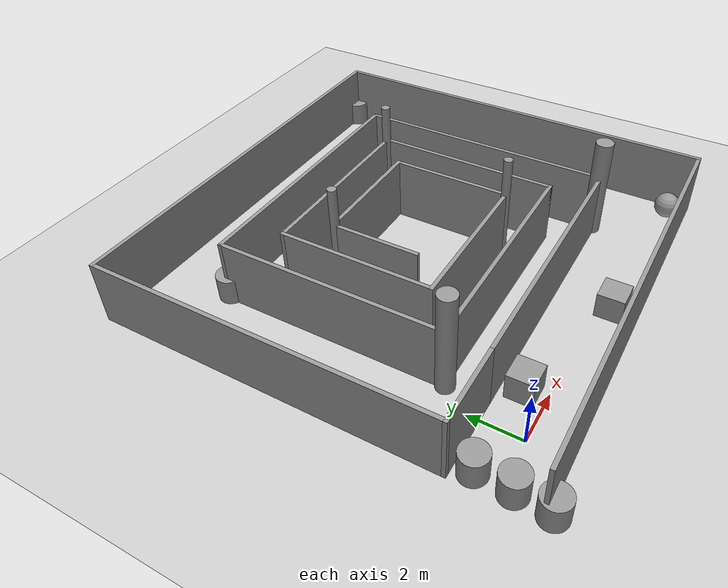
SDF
<sdf version="1.7">
 <world name="default">
  <light name="sun" type="directional">
   <pose>0 0 10 0 -0 0</pose>
   <diffuse>0.8 0.8 0.8 1</diffuse>
   <specular>0.2 0.2 0.2 1</specular>
   <attenuation>
    <range>1000</range>
    <constant>0.9</constant>
    <linear>0.01</linear>
    <quadratic>0.001</quadratic>
   </attenuation>
   <direction>-0.5 0.1 -0.9</direction>
   <spot><inner_angle>0</inner_angle><outer_angle>0</outer_angle><falloff>0</falloff></spot>
  </light>
  <model name="ground_plane">
   <static>1</static>
   <link name="link">
    <collision name="collision">
     <geometry><plane><normal>0 0 1</normal><size>100 100</size></plane></geometry>
     <surface>
      <contact><collide_bitmask>65535</collide_bitmask></contact>
      <friction><ode><mu>100</mu><mu2>50</mu2></ode></friction>
     </surface>
    </collision>
    <visual name="visual">
     <cast_shadows>0</cast_shadows>
     <geometry><plane><normal>0 0 1</normal><size>100 100</size></plane></geometry>
     <material>
      <script><uri>file://media/materials/scripts/gazebo.material</uri><name>Gazebo/Grey</name></script>
     </material>
    </visual>
   </link>
  </model>
  <gravity>0 0 -9.8</gravity>
  <magnetic_field>6e-06 2.3e-05 -4.2e-05</magnetic_field>
  <atmosphere type="adiabatic"/>
  <physics type="ode">
   <max_step_size>0.001</max_step_size>
   <real_time_factor>1</real_time_factor>
   <real_time_update_rate>1000</real_time_update_rate>
  </physics>
  <scene><ambient>0.4 0.4 0.4 1</ambient><background>0.7 0.7 0.7 1</background><shadows>1</shadows></scene>
  <spherical_coordinates>
   <surface_model>EARTH_WGS84</surface_model>
   <latitude_deg>0</latitude_deg>
   <longitude_deg>0</longitude_deg>
   <elevation>0</elevation>
   <heading_deg>0</heading_deg>
  </spherical_coordinates>
  <model name="maze03">
   <pose>5.87859 6.63891 0 0 -0 0</pose>
   <link name="Wall_38">
    <collision name="Wall_38_Collision">
     <geometry><box><size>10.25 0.15 2.5</size></box></geometry>
     <pose>0 0 1.25 0 -0 0</pose>
    </collision>
    <visual name="Wall_38_Visual">
     <pose>0 0 1.25 0 -0 0</pose>
     <geometry><box><size>10.25 0.15 2.5</size></box></geometry>
     <material>
      <script><uri>file://media/materials/scripts/gazebo.material</uri><name>Gazebo/Grey</name></script>
      <ambient>1 1 1 1</ambient>
     </material>
     <meta><layer>0</layer></meta>
    </visual>
    <pose>-0.15 -5.05 0 0 -0 0</pose>
   </link>
   <link name="Wall_39">
    <collision name="Wall_39_Collision">
     <geometry><box><size>10.25 0.15 2.5</size></box></geometry>
     <pose>0 0 1.25 0 -0 0</pose>
    </collision>
    <visual name="Wall_39_Visual">
     <pose>0 0 1.25 0 -0 0</pose>
     <geometry><box><size>10.25 0.15 2.5</size></box></geometry>
     <material>
      <script><uri>file://media/materials/scripts/gazebo.material</uri><name>Gazebo/Grey</name></script>
      <ambient>1 1 1 1</ambient>
     </material>
     <meta><layer>0</layer></meta>
    </visual>
    <pose>4.9 0 0 0 -0 1.5708</pose>
   </link>
   <link name="Wall_40">
    <collision name="Wall_40_Collision">
     <geometry><box><size>10.25 0.15 2.5</size></box></geometry>
     <pose>0 0 1.25 0 -0 0</pose>
    </collision>
    <visual name="Wall_40_Visual">
     <pose>0 0 1.25 0 -0 0</pose>
     <geometry><box><size>10.25 0.15 2.5</size></box></geometry>
     <material>
      <script><uri>file://media/materials/scripts/gazebo.material</uri><name>Gazebo/Grey</name></script>
      <ambient>1 1 1 1</ambient>
     </material>
     <meta><layer>0</layer></meta>
    </visual>
    <pose>-0.15 5.05 0 0 -0 3.14159</pose>
   </link>
   <link name="Wall_41">
    <collision name="Wall_41_Collision">
     <geometry><box><size>8.75 0.15 2.5</size></box></geometry>
     <pose>0 0 1.25 0 -0 0</pose>
    </collision>
    <visual name="Wall_41_Visual">
     <pose>0 0 1.25 0 -0 0</pose>
     <geometry><box><size>8.75 0.15 2.5</size></box></geometry>
     <material>
      <script><uri>file://media/materials/scripts/gazebo.material</uri><name>Gazebo/Grey</name></script>
      <ambient>1 1 1 1</ambient>
     </material>
     <meta><layer>0</layer></meta>
    </visual>
    <pose>-5.2 0.75 0 0 -0 -1.5708</pose>
   </link>
   <link name="Wall_42">
    <collision name="Wall_42_Collision">
     <geometry><box><size>8.75 0.15 2.5</size></box></geometry>
     <pose>0 0 1.25 0 -0 0</pose>
    </collision>
    <visual name="Wall_42_Visual">
     <pose>0 0 1.25 0 -0 0</pose>
     <geometry><box><size>8.75 0.15 2.5</size></box></geometry>
     <material>
      <script><uri>file://media/materials/scripts/gazebo.material</uri><name>Gazebo/Grey</name></script>
      <ambient>1 1 1 1</ambient>
     </material>
     <meta><layer>0</layer></meta>
    </visual>
    <pose>-0.9 -3.55 0 0 -0 0</pose>
   </link>
   <link name="Wall_43">
    <collision name="Wall_43_Collision">
     <geometry><box><size>7.25 0.15 2.5</size></box></geometry>
     <pose>0 0 1.25 0 -0 0</pose>
    </collision>
    <visual name="Wall_43_Visual">
     <pose>0 0 1.25 0 -0 0</pose>
     <geometry><box><size>7.25 0.15 2.5</size></box></geometry>
     <material>
      <script><uri>file://media/materials/scripts/gazebo.material</uri><name>Gazebo/Grey</name></script>
      <ambient>1 1 1 1</ambient>
     </material>
     <meta><layer>0</layer></meta>
    </visual>
    <pose>3.4 0 0 0 -0 1.5708</pose>
   </link>
   <link name="Wall_44">
    <collision name="Wall_44_Collision">
     <geometry><box><size>7.25 0.15 2.5</size></box></geometry>
     <pose>0 0 1.25 0 -0 0</pose>
    </collision>
    <visual name="Wall_44_Visual">
     <pose>0 0 1.25 0 -0 0</pose>
     <geometry><box><size>7.25 0.15 2.5</size></box></geometry>
     <material>
      <script><uri>file://media/materials/scripts/gazebo.material</uri><name>Gazebo/Grey</name></script>
      <ambient>1 1 1 1</ambient>
     </material>
     <meta><layer>0</layer></meta>
    </visual>
    <pose>-0.15 3.55 0 0 -0 3.14159</pose>
   </link>
   <link name="Wall_45">
    <collision name="Wall_45_Collision">
     <geometry><box><size>6 0.15 2.5</size></box></geometry>
     <pose>0 0 1.25 0 -0 0</pose>
    </collision>
    <visual name="Wall_45_Visual">
     <pose>0 0 1.25 0 -0 0</pose>
     <geometry><box><size>6 0.15 2.5</size></box></geometry>
     <material>
      <script><uri>file://media/materials/scripts/gazebo.material</uri><name>Gazebo/Grey</name></script>
      <ambient>1 1 1 1</ambient>
     </material>
     <meta><layer>0</layer></meta>
    </visual>
    <pose>-3.7 0.625 0 0 -0 -1.5708</pose>
   </link>
   <link name="Wall_46">
    <collision name="Wall_46_Collision">
     <geometry><box><size>6 0.15 2.5</size></box></geometry>
     <pose>0 0 1.25 0 -0 0</pose>
    </collision>
    <visual name="Wall_46_Visual">
     <pose>0 0 1.25 0 -0 0</pose>
     <geometry><box><size>6 0.15 2.5</size></box></geometry>
     <material>
      <script><uri>file://media/materials/scripts/gazebo.material</uri><name>Gazebo/Grey</name></script>
      <ambient>1 1 1 1</ambient>
     </material>
     <meta><layer>0</layer></meta>
    </visual>
    <pose>-0.775 -2.3 0 0 -0 0</pose>
   </link>
   <link name="Wall_47">
    <collision name="Wall_47_Collision">
     <geometry><box><size>4.75 0.15 2.5</size></box></geometry>
     <pose>0 0 1.25 0 -0 0</pose>
    </collision>
    <visual name="Wall_47_Visual">
     <pose>0 0 1.25 0 -0 0</pose>
     <geometry><box><size>4.75 0.15 2.5</size></box></geometry>
     <material>
      <script><uri>file://media/materials/scripts/gazebo.material</uri><name>Gazebo/Grey</name></script>
      <ambient>1 1 1 1</ambient>
     </material>
     <meta><layer>0</layer></meta>
    </visual>
    <pose>2.15 0 0 0 -0 1.5708</pose>
   </link>
   <link name="Wall_48">
    <collision name="Wall_48_Collision">
     <geometry><box><size>4.75 0.15 2.5</size></box></geometry>
     <pose>0 0 1.25 0 -0 0</pose>
    </collision>
    <visual name="Wall_48_Visual">
     <pose>0 0 1.25 0 -0 0</pose>
     <geometry><box><size>4.75 0.15 2.5</size></box></geometry>
     <material>
      <script><uri>file://media/materials/scripts/gazebo.material</uri><name>Gazebo/Grey</name></script>
      <ambient>1 1 1 1</ambient>
     </material>
     <meta><layer>0</layer></meta>
    </visual>
    <pose>-0.15 2.3 0 0 -0 3.14159</pose>
   </link>
   <link name="Wall_49">
    <collision name="Wall_49_Collision">
     <geometry><box><size>3.5 0.15 2.5</size></box></geometry>
     <pose>0 0 1.25 0 -0 0</pose>
    </collision>
    <visual name="Wall_49_Visual">
     <pose>0 0 1.25 0 -0 0</pose>
     <geometry><box><size>3.5 0.15 2.5</size></box></geometry>
     <material>
      <script><uri>file://media/materials/scripts/gazebo.material</uri><name>Gazebo/Grey</name></script>
      <ambient>1 1 1 1</ambient>
     </material>
     <meta><layer>0</layer></meta>
    </visual>
    <pose>-2.45 0.625 0 0 -0 -1.5708</pose>
   </link>
   <link name="Wall_53">
    <collision name="Wall_53_Collision">
     <geometry><box><size>3 0.15 2.5</size></box></geometry>
     <pose>0 0 1.25 0 -0 0</pose>
    </collision>
    <visual name="Wall_53_Visual">
     <pose>0 0 1.25 0 -0 0</pose>
     <geometry><box><size>3 0.15 2.5</size></box></geometry>
     <material>
      <script><uri>file://media/materials/scripts/gazebo.material</uri><name>Gazebo/Grey</name></script>
      <ambient>1 1 1 1</ambient>
     </material>
     <meta><layer>0</layer></meta>
    </visual>
    <pose>-6.625 -5.05 0 0 -0 3.14159</pose>
   </link>
   <link name="Wall_56">
    <collision name="Wall_56_Collision">
     <geometry><box><size>13.25 0.15 2.5</size></box></geometry>
     <pose>0 0 1.25 0 -0 0</pose>
    </collision>
    <visual name="Wall_56_Visual">
     <pose>0 0 1.25 0 -0 0</pose>
     <geometry><box><size>13.25 0.15 2.5</size></box></geometry>
     <material>
      <script><uri>file://media/materials/scripts/gazebo.material</uri><name>Gazebo/Grey</name></script>
      <ambient>1 1 1 1</ambient>
     </material>
     <meta><layer>0</layer></meta>
    </visual>
    <pose>-8.05 1.5 0 0 -0 1.5708</pose>
   </link>
   <link name="Wall_57">
    <collision name="Wall_57_Collision">
     <geometry><box><size>16.25 0.15 2.5</size></box></geometry>
     <pose>0 0 1.25 0 -0 0</pose>
    </collision>
    <visual name="Wall_57_Visual">
     <pose>0 0 1.25 0 -0 0</pose>
     <geometry><box><size>16.25 0.15 2.5</size></box></geometry>
     <material>
      <script><uri>file://media/materials/scripts/gazebo.material</uri><name>Gazebo/Grey</name></script>
      <ambient>1 1 1 1</ambient>
     </material>
     <meta><layer>0</layer></meta>
    </visual>
    <pose>-0 8.05 0 0 -0 0</pose>
   </link>
   <link name="Wall_58">
    <collision name="Wall_58_Collision">
     <geometry><box><size>16.25 0.15 2.5</size></box></geometry>
     <pose>0 0 1.25 0 -0 0</pose>
    </collision>
    <visual name="Wall_58_Visual">
     <pose>0 0 1.25 0 -0 0</pose>
     <geometry><box><size>16.25 0.15 2.5</size></box></geometry>
     <material>
      <script><uri>file://media/materials/scripts/gazebo.material</uri><name>Gazebo/Grey</name></script>
      <ambient>1 1 1 1</ambient>
     </material>
     <meta><layer>0</layer></meta>
    </visual>
    <pose>8.05 0 0 0 -0 -1.5708</pose>
   </link>
   <link name="Wall_59">
    <collision name="Wall_59_Collision">
     <geometry><box><size>16.25 0.15 2.5</size></box></geometry>
     <pose>0 0 1.25 0 -0 0</pose>
    </collision>
    <visual name="Wall_59_Visual">
     <pose>0 0 1.25 0 -0 0</pose>
     <geometry><box><size>16.25 0.15 2.5</size></box></geometry>
     <material>
      <script><uri>file://media/materials/scripts/gazebo.material</uri><name>Gazebo/Grey</name></script>
      <ambient>1 1 1 1</ambient>
     </material>
     <meta><layer>0</layer></meta>
    </visual>
    <pose>-0 -8.05 0 0 -0 3.14159</pose>
   </link>
   <static>1</static>
  </model>
  <model name="unit_cylinder">
   <pose>-1.89221 -1.58086 0.499998 3e-06 -3e-06 0.111612</pose>
   <link name="link">
    <inertial>
     <mass>1</mass>
     <inertia><ixx>0.145833</ixx><ixy>0</ixy><ixz>0</ixz><iyy>0.145833</iyy><iyz>0</iyz><izz>0.125</izz></inertia>
    </inertial>
    <collision name="collision">
     <geometry><cylinder><radius>0.5</radius><length>1</length></cylinder></geometry>
    </collision>
    <visual name="visual">
     <geometry><cylinder><radius>0.5</radius><length>1</length></cylinder></geometry>
     <material>
      <script><name>Gazebo/Grey</name><uri>file://media/materials/scripts/gazebo.material</uri></script>
     </material>
    </visual>
   </link>
  </model>
  <model name="unit_cylinder_1">
   <pose>13.7536 14.6464 0.499997 3e-06 1e-06 -0</pose>
   <link name="link">
    <inertial>
     <mass>1</mass>
     <inertia><ixx>0.145833</ixx><ixy>0</ixy><ixz>0</ixz><iyy>0.145833</iyy><iyz>0</iyz><izz>0.125</izz></inertia>
    </inertial>
    <collision name="collision">
     <geometry><cylinder><radius>0.5</radius><length>1</length></cylinder></geometry>
    </collision>
    <visual name="visual">
     <geometry><cylinder><radius>0.5</radius><length>1</length></cylinder></geometry>
     <material>
      <script><name>Gazebo/Grey</name><uri>file://media/materials/scripts/gazebo.material</uri></script>
     </material>
    </visual>
   </link>
  </model>
  <model name="unit_cylinder_2">
   <pose>0.842048 11.7545 0.499991 -0 -0 -0</pose>
   <link name="link">
    <inertial>
     <mass>1</mass>
     <inertia><ixx>0.145833</ixx><ixy>0</ixy><ixz>0</ixz><iyy>0.145833</iyy><iyz>0</iyz><izz>0.125</izz></inertia>
    </inertial>
    <collision name="collision">
     <geometry><cylinder><radius>0.5</radius><length>1</length></cylinder></geometry>
    </collision>
    <visual name="visual">
     <geometry><cylinder><radius>0.5</radius><length>1</length></cylinder></geometry>
     <material>
      <script><name>Gazebo/Grey</name><uri>file://media/materials/scripts/gazebo.material</uri></script>
     </material>
    </visual>
   </link>
  </model>
  <model name="unit_cylinder_0">
   <link name="link">
    <inertial>
     <mass>1.87711</mass>
     <inertia><ixx>2.56285</ixx><ixy>0</ixy><ixz>0</ixz><iyy>2.56285</iyy><iyz>0</iyz><izz>0.109992</izz></inertia>
    </inertial>
    <visual name="visual">
     <geometry><cylinder><radius>0.342335</radius><length>4.00403</length></cylinder></geometry>
     <material>
      <script><name>Gazebo/Grey</name><uri>file://media/materials/scripts/gazebo.material</uri></script>
      <shader type="pixel"/>
     </material>
    </visual>
    <collision name="collision">
     <geometry><cylinder><radius>0.342335</radius><length>4.00403</length></cylinder></geometry>
     <surface>
      <friction>
       <ode><mu>1</mu><mu2>1</mu2><fdir1>0 0 0</fdir1><slip1>0</slip1><slip2>0</slip2></ode>
       <torsional>
        <coefficient>1</coefficient>
        <patch_radius>0</patch_radius>
        <surface_radius>0</surface_radius>
        <use_patch_radius>1</use_patch_radius>
        <ode><slip>0</slip></ode>
       </torsional>
      </friction>
      <bounce><restitution_coefficient>0</restitution_coefficient><threshold>1e+06</threshold></bounce>
      <contact>
       <collide_without_contact>0</collide_without_contact>
       <collide_without_contact_bitmask>1</collide_without_contact_bitmask>
       <collide_bitmask>1</collide_bitmask>
       <ode>
        <soft_cfm>0</soft_cfm>
        <soft_erp>0.2</soft_erp>
        <kp>1e+13</kp>
        <kd>1</kd>
        <max_vel>0.01</max_vel>
        <min_depth>0</min_depth>
       </ode>
       <bullet>
        <split_impulse>1</split_impulse>
        <split_impulse_penetration_threshold>-0.01</split_impulse_penetration_threshold>
        <soft_cfm>0</soft_cfm>
        <soft_erp>0.2</soft_erp>
        <kp>1e+13</kp>
        <kd>1</kd>
       </bullet>
      </contact>
     </surface>
    </collision>
   </link>
   <static>0</static>
   <pose>10.8158 1.66885 2.00201 0 0 -3e-06</pose>
  </model>
  <model name="unit_box_0">
   <pose>1.72202 0.781729 0.5 0 -0 0.00052</pose>
   <link name="link">
    <inertial>
     <mass>1</mass>
     <inertia>
      <ixx>0.166667</ixx>
      <ixy>0</ixy>
      <ixz>0</ixz>
      <iyy>0.166667</iyy>
      <iyz>0</iyz>
      <izz>0.166667</izz>
     </inertia>
    </inertial>
    <collision name="collision"><geometry><box><size>1 0.999995 1</size></box></geometry></collision>
    <visual name="visual">
     <geometry><box><size>1 0.999995 1</size></box></geometry>
     <material>
      <script><name>Gazebo/Grey</name><uri>file://media/materials/scripts/gazebo.material</uri></script>
     </material>
    </visual>
   </link>
  </model>
  <model name="unit_box_0_clone">
   <pose>6.55511 -0.536638 0.499995 0 -1e-05 0</pose>
   <link name="link">
    <inertial>
     <mass>1</mass>
     <inertia>
      <ixx>0.166667</ixx>
      <ixy>0</ixy>
      <ixz>0</ixz>
      <iyy>0.166667</iyy>
      <iyz>0</iyz>
      <izz>0.166667</izz>
     </inertia>
    </inertial>
    <collision name="collision"><geometry><box><size>1 1 1</size></box></geometry></collision>
    <visual name="visual">
     <geometry><box><size>1 1 1</size></box></geometry>
     <material>
      <script><name>Gazebo/Grey</name><uri>file://media/materials/scripts/gazebo.material</uri></script>
     </material>
    </visual>
   </link>
  </model>
  <model name="unit_sphere">
   <pose>13.1414 -0.742298 0.5 0 -0 0</pose>
   <link name="link">
    <inertial>
     <mass>1</mass>
     <inertia><ixx>0.1</ixx><ixy>0</ixy><ixz>0</ixz><iyy>0.1</iyy><iyz>0</iyz><izz>0.1</izz></inertia>
    </inertial>
    <collision name="collision"><geometry><sphere><radius>0.5</radius></sphere></geometry></collision>
    <visual name="visual">
     <geometry><sphere><radius>0.5</radius></sphere></geometry>
     <material>
      <script><name>Gazebo/Grey</name><uri>file://media/materials/scripts/gazebo.material</uri></script>
     </material>
    </visual>
   </link>
  </model>
  <model name="unit_sphere_clone">
   <pose>11.5774 8.50818 0.5 0 -0 0</pose>
   <link name="link">
    <inertial>
     <mass>1</mass>
     <inertia><ixx>0.1</ixx><ixy>0</ixy><ixz>0</ixz><iyy>0.1</iyy><iyz>0</iyz><izz>0.1</izz></inertia>
    </inertial>
    <collision name="collision"><geometry><sphere><radius>0.5</radius></sphere></geometry></collision>
    <visual name="visual">
     <geometry><sphere><radius>0.5</radius></sphere></geometry>
     <material>
      <script><name>Gazebo/Grey</name><uri>file://media/materials/scripts/gazebo.material</uri></script>
     </material>
    </visual>
   </link>
  </model>
  <model name="unit_sphere_clone_clone">
   <pose>-1.59643 14.1139 0.5 0.55449 0.224996 1.02299</pose>
   <link name="link">
    <inertial>
     <mass>1</mass>
     <inertia><ixx>0.1</ixx><ixy>0</ixy><ixz>0</ixz><iyy>0.1</iyy><iyz>0</iyz><izz>0.1</izz></inertia>
    </inertial>
    <collision name="collision"><geometry><sphere><radius>0.5</radius></sphere></geometry></collision>
    <visual name="visual">
     <geometry><sphere><radius>0.5</radius></sphere></geometry>
     <material>
      <script><name>Gazebo/Grey</name><uri>file://media/materials/scripts/gazebo.material</uri></script>
     </material>
    </visual>
   </link>
  </model>
  <model name="unit_cylinder_0_clone">
   <link name="link">
    <inertial>
     <mass>1.87711</mass>
     <inertia><ixx>2.56285</ixx><ixy>0</ixy><ixz>0</ixz><iyy>2.56285</iyy><iyz>0</iyz><izz>0.109992</izz></inertia>
    </inertial>
    <visual name="visual">
     <geometry><cylinder><radius>0.342334</radius><length>4.00403</length></cylinder></geometry>
     <material>
      <script><name>Gazebo/Grey</name><uri>file://media/materials/scripts/gazebo.material</uri></script>
      <shader type="pixel"/>
     </material>
    </visual>
    <collision name="collision">
     <geometry><cylinder><radius>0.342334</radius><length>4.00403</length></cylinder></geometry>
     <surface>
      <friction>
       <ode><mu>1</mu><mu2>1</mu2><fdir1>0 0 0</fdir1><slip1>0</slip1><slip2>0</slip2></ode>
       <torsional>
        <coefficient>1</coefficient>
        <patch_radius>0</patch_radius>
        <surface_radius>0</surface_radius>
        <use_patch_radius>1</use_patch_radius>
        <ode><slip>0</slip></ode>
       </torsional>
      </friction>
      <bounce><restitution_coefficient>0</restitution_coefficient><threshold>1e+06</threshold></bounce>
      <contact>
       <collide_without_contact>0</collide_without_contact>
       <collide_without_contact_bitmask>1</collide_without_contact_bitmask>
       <collide_bitmask>1</collide_bitmask>
       <ode>
        <soft_cfm>0</soft_cfm>
        <soft_erp>0.2</soft_erp>
        <kp>1e+13</kp>
        <kd>1</kd>
        <max_vel>0.01</max_vel>
        <min_depth>0</min_depth>
       </ode>
       <bullet>
        <split_impulse>1</split_impulse>
        <split_impulse_penetration_threshold>-0.01</split_impulse_penetration_threshold>
        <soft_cfm>0</soft_cfm>
        <soft_erp>0.2</soft_erp>
        <kp>1e+13</kp>
        <kd>1</kd>
       </bullet>
      </contact>
     </surface>
    </collision>
   </link>
   <static>0</static>
   <pose>0.715908 3.06102 2.00201 0 0 -0.000432</pose>
  </model>
  <model name="unit_cylinder_0_clone_clone">
   <link name="link">
    <inertial>
     <mass>1.87711</mass>
     <inertia><ixx>2.56285</ixx><ixy>0</ixy><ixz>0</ixz><iyy>2.56285</iyy><iyz>0</iyz><izz>0.109992</izz></inertia>
    </inertial>
    <visual name="visual">
     <geometry><cylinder><radius>0.171377</radius><length>4.00403</length></cylinder></geometry>
     <material>
      <script><name>Gazebo/Grey</name><uri>file://media/materials/scripts/gazebo.material</uri></script>
      <shader type="pixel"/>
     </material>
    </visual>
    <collision name="collision">
     <geometry><cylinder><radius>0.171377</radius><length>4.00403</length></cylinder></geometry>
     <surface>
      <friction>
       <ode><mu>1</mu><mu2>1</mu2><fdir1>0 0 0</fdir1><slip1>0</slip1><slip2>0</slip2></ode>
       <torsional>
        <coefficient>1</coefficient>
        <patch_radius>0</patch_radius>
        <surface_radius>0</surface_radius>
        <use_patch_radius>1</use_patch_radius>
        <ode><slip>0</slip></ode>
       </torsional>
      </friction>
      <bounce><restitution_coefficient>0</restitution_coefficient><threshold>1e+06</threshold></bounce>
      <contact>
       <collide_without_contact>0</collide_without_contact>
       <collide_without_contact_bitmask>1</collide_without_contact_bitmask>
       <collide_bitmask>1</collide_bitmask>
       <ode>
        <soft_cfm>0</soft_cfm>
        <soft_erp>0.2</soft_erp>
        <kp>1e+13</kp>
        <kd>1</kd>
        <max_vel>0.01</max_vel>
        <min_depth>0</min_depth>
       </ode>
       <bullet>
        <split_impulse>1</split_impulse>
        <split_impulse_penetration_threshold>-0.01</split_impulse_penetration_threshold>
        <soft_cfm>0</soft_cfm>
        <soft_erp>0.2</soft_erp>
        <kp>1e+13</kp>
        <kd>1</kd>
       </bullet>
      </contact>
     </surface>
    </collision>
   </link>
   <static>0</static>
   <pose>8.03466 4.35691 2.00201 0 0 -0.00038</pose>
  </model>
  <model name="unit_cylinder_0_clone_clone_clone">
   <link name="link">
    <inertial>
     <mass>1.87711</mass>
     <inertia><ixx>2.56285</ixx><ixy>0</ixy><ixz>0</ixz><iyy>2.56285</iyy><iyz>0</iyz><izz>0.109992</izz></inertia>
    </inertial>
    <visual name="visual">
     <geometry><cylinder><radius>0.171377</radius><length>4.00403</length></cylinder></geometry>
     <material>
      <script><name>Gazebo/Grey</name><uri>file://media/materials/scripts/gazebo.material</uri></script>
      <shader type="pixel"/>
     </material>
    </visual>
    <collision name="collision">
     <geometry><cylinder><radius>0.171377</radius><length>4.00403</length></cylinder></geometry>
     <surface>
      <friction>
       <ode><mu>1</mu><mu2>1</mu2><fdir1>0 0 0</fdir1><slip1>0</slip1><slip2>0</slip2></ode>
       <torsional>
        <coefficient>1</coefficient>
        <patch_radius>0</patch_radius>
        <surface_radius>0</surface_radius>
        <use_patch_radius>1</use_patch_radius>
        <ode><slip>0</slip></ode>
       </torsional>
      </friction>
      <bounce><restitution_coefficient>0</restitution_coefficient><threshold>1e+06</threshold></bounce>
      <contact>
       <collide_without_contact>0</collide_without_contact>
       <collide_without_contact_bitmask>1</collide_without_contact_bitmask>
       <collide_bitmask>1</collide_bitmask>
       <ode>
        <soft_cfm>0</soft_cfm>
        <soft_erp>0.2</soft_erp>
        <kp>1e+13</kp>
        <kd>1</kd>
        <max_vel>0.01</max_vel>
        <min_depth>0</min_depth>
       </ode>
       <bullet>
        <split_impulse>1</split_impulse>
        <split_impulse_penetration_threshold>-0.01</split_impulse_penetration_threshold>
        <soft_cfm>0</soft_cfm>
        <soft_erp>0.2</soft_erp>
        <kp>1e+13</kp>
        <kd>1</kd>
       </bullet>
      </contact>
     </surface>
    </collision>
   </link>
   <static>0</static>
   <pose>9.20718 10.1925 2.00201 0 0 -0.000351</pose>
  </model>
  <model name="unit_cylinder_0_clone_clone_clone_0">
   <link name="link">
    <inertial>
     <mass>1.87711</mass>
     <inertia><ixx>2.56285</ixx><ixy>0</ixy><ixz>0</ixz><iyy>2.56285</iyy><iyz>0</iyz><izz>0.109992</izz></inertia>
    </inertial>
    <visual name="visual">
     <geometry><cylinder><radius>0.171377</radius><length>4.00403</length></cylinder></geometry>
     <material>
      <script><name>Gazebo/Grey</name><uri>file://media/materials/scripts/gazebo.material</uri></script>
      <shader type="pixel"/>
     </material>
    </visual>
    <collision name="collision">
     <geometry><cylinder><radius>0.171377</radius><length>4.00403</length></cylinder></geometry>
     <surface>
      <friction>
       <ode><mu>1</mu><mu2>1</mu2><fdir1>0 0 0</fdir1><slip1>0</slip1><slip2>0</slip2></ode>
       <torsional>
        <coefficient>1</coefficient>
        <patch_radius>0</patch_radius>
        <surface_radius>0</surface_radius>
        <use_patch_radius>1</use_patch_radius>
        <ode><slip>0</slip></ode>
       </torsional>
      </friction>
      <bounce><restitution_coefficient>0</restitution_coefficient><threshold>1e+06</threshold></bounce>
      <contact>
       <collide_without_contact>0</collide_without_contact>
       <collide_without_contact_bitmask>1</collide_without_contact_bitmask>
       <collide_bitmask>1</collide_bitmask>
       <ode>
        <soft_cfm>0</soft_cfm>
        <soft_erp>0.2</soft_erp>
        <kp>1e+13</kp>
        <kd>1</kd>
        <max_vel>0.01</max_vel>
        <min_depth>0</min_depth>
       </ode>
       <bullet>
        <split_impulse>1</split_impulse>
        <split_impulse_penetration_threshold>-0.01</split_impulse_penetration_threshold>
        <soft_cfm>0</soft_cfm>
        <soft_erp>0.2</soft_erp>
        <kp>1e+13</kp>
        <kd>1</kd>
       </bullet>
      </contact>
     </surface>
    </collision>
   </link>
   <static>0</static>
   <pose>3.46372 8.89649 2.00201 0 0 -0.000404</pose>
  </model>
  <model name="unit_cylinder_clone">
   <pose>-1.78811 -0.358702 0.499993 -4e-06 -3e-06 0.111612</pose>
   <link name="link">
    <inertial>
     <mass>1</mass>
     <inertia><ixx>0.145833</ixx><ixy>0</ixy><ixz>0</ixz><iyy>0.145833</iyy><iyz>0</iyz><izz>0.125</izz></inertia>
    </inertial>
    <collision name="collision">
     <geometry><cylinder><radius>0.5</radius><length>1</length></cylinder></geometry>
    </collision>
    <visual name="visual">
     <geometry><cylinder><radius>0.5</radius><length>1</length></cylinder></geometry>
     <material>
      <script><name>Gazebo/Grey</name><uri>file://media/materials/scripts/gazebo.material</uri></script>
     </material>
    </visual>
   </link>
  </model>
  <model name="unit_cylinder_clone_0">
   <pose>-1.72017 0.91361 0.499997 4e-06 4e-06 0.111612</pose>
   <link name="link">
    <inertial>
     <mass>1</mass>
     <inertia><ixx>0.145833</ixx><ixy>0</ixy><ixz>0</ixz><iyy>0.145833</iyy><iyz>0</iyz><izz>0.125</izz></inertia>
    </inertial>
    <collision name="collision">
     <geometry><cylinder><radius>0.5</radius><length>1</length></cylinder></geometry>
    </collision>
    <visual name="visual">
     <geometry><cylinder><radius>0.5</radius><length>1</length></cylinder></geometry>
     <material>
      <script><name>Gazebo/Grey</name><uri>file://media/materials/scripts/gazebo.material</uri></script>
     </material>
    </visual>
   </link>
  </model>
 </world>
</sdf>
